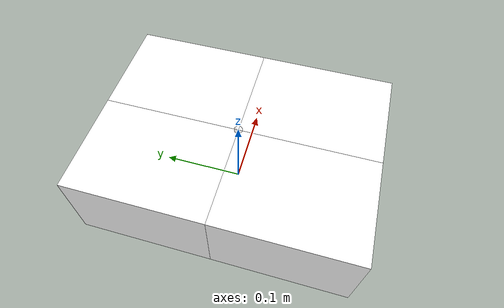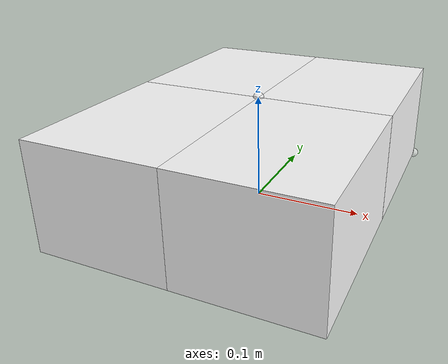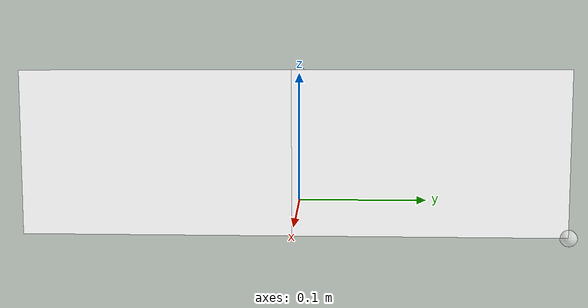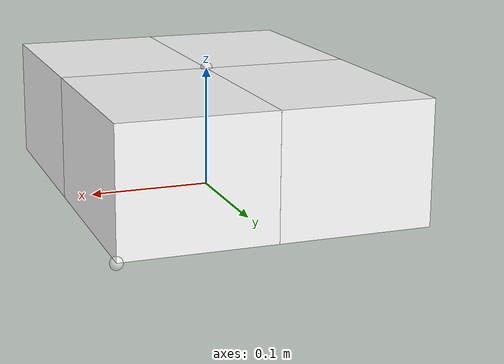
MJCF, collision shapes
<mujoco model="cardbox_a1_flat">
  <default>
    <default class="visual">
      <geom group="1" type="mesh" contype="0" conaffinity="0" density="100"/>
    </default>
    <default class="collision">
      <geom group="0" type="mesh" density="100" solimp="0.95 0.98 0.001" solref="0.004 1" rgba="1 1 1 0.25"/>
    </default>
  </default>
  <asset>
    <texture type="2d" name="T_Cardbox_A1_Albedo" file="textures/T_Cardbox_A1_Albedo.png"/>
    <material name="Cardboard_A" texture="T_Cardbox_A1_Albedo" specular="0.5" shininess="0.25"/>
    <mesh file="meshes/cardbox_a1.obj" name="cardbox_a1" scale="1.0 1.0 0.41"/>
  </asset>
  <worldbody>
    <body>
      <body name="object">
        <geom material="Cardboard_A" mesh="cardbox_a1" class="visual"/>
        <geom type="box" pos="-0.06124296158420828 0.0823374589039666 0.05" size="0.061371401217758345 0.0823902606847455 0.05" class="collision"/>
        <geom type="box" pos="-0.06129104205382395 -0.0824430500368552 0.05" size="0.061371401217758345 0.0823902606847455 0.05" class="collision"/>
        <geom type="box" pos="0.06149979996431068 0.08230166840300479 0.05" size="0.061371401217758345 0.0823902606847455 0.05" class="collision"/>
        <geom type="box" pos="0.06145171949469501 -0.08247884053781701 0.05" size="0.061371401217758345 0.0823902606847455 0.05" class="collision"/>
      </body>
      <site name="bottom_site" pos="0 0 0.000556" rgba="1 1 1 0.5" size="0.005"/>
      <site name="top_site" pos="0 0 0.1" rgba="1 1 1 0.5" size="0.005"/>
      <site name="horizontal_radius_site" pos="0.122875 0.164772 0" rgba="1 1 1 0.5" size="0.005"/>
    </body>
  </worldbody>
</mujoco>
